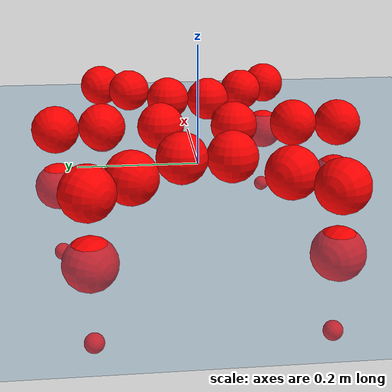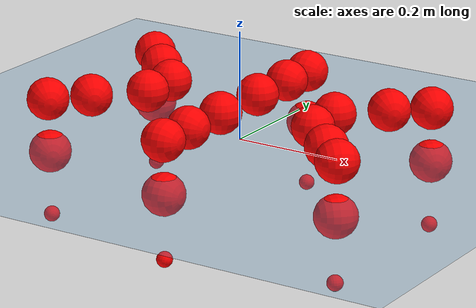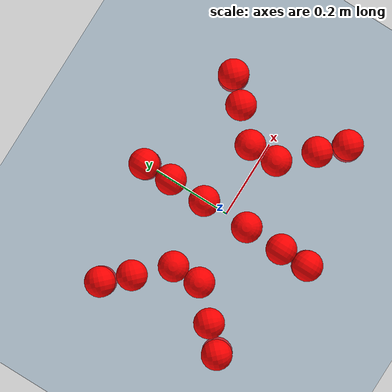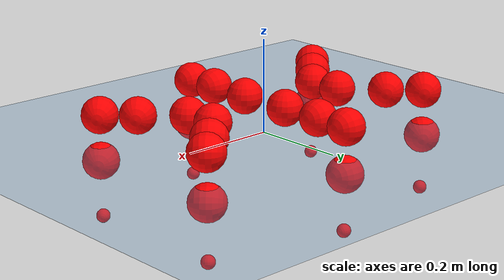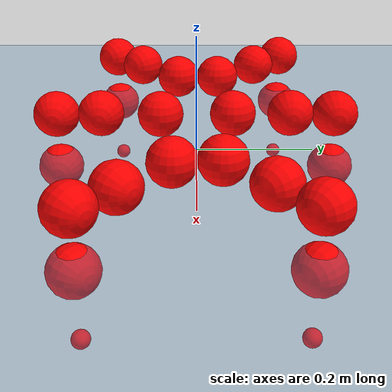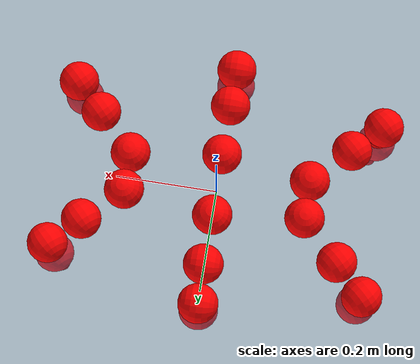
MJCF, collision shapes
<mujoco model="Golem">
  <compiler angle="radian" assetdir="assets" balanceinertia="true" inertiafromgeom="false"/>

  <option timestep="0.005" density="1.2" viscosity="2e-05"/>

  <size nkey="1"/>

  <visual>
    <quality shadowsize="8192"/>
    <map shadowclip="0.5"/>
  </visual>

  <default>
    <default class="/">
      <joint armature="0.01" damping="0.01" frictionloss="0.01"/>
      <geom contype="0" conaffinity="0" group="1" solref="-1000 -80"/>
      <site size="0.01 0.005 0.005" group="5"/>
      <general forcelimited="true" biastype="affine" gainprm="25" biasprm="0 -25 -0.5"/>
      <default class="visual">
        <geom type="mesh" group="2"/>
      </default>
      <default class="collision">
        <geom group="3"/>
      </default>
      <default class="foot">
        <geom size="0.01 0 0" condim="6" group="4" priority="1" solimp="0.015 1 0.01"/>
      </default>
      <default class="reward_collision_sphere">
        <geom group="5" rgba="1 0 0 1"/>
      </default>
    </default>
  </default>

  <asset>
    <texture type="skybox" colorspace="auto" name="//unnamed_texture_0" builtin="gradient" rgb1="0.95 0.95 0.95" rgb2="0.95 0.95 0.95" width="100" height="600"/>
    <texture type="2d" colorspace="auto" name="texplane" builtin="checker" rgb1="0.345 0.575 0.748" rgb2="0.345 0.575 0.748" markrgb="1 1 1" width="512" height="512"/>
    <material name="MatPlane" class="/" texture="texplane" texuniform="true" texrepeat="2 2" specular="0.9"/>
    <mesh name="body" class="/" file="body.stl" scale="0.001 0.001 0.001"/>
    <mesh name="coxa" class="/" file="coxa.stl" scale="0.001 0.001 0.001"/>
    <mesh name="femur" class="/" file="femur.stl" scale="0.001 0.001 0.001"/>
    <mesh name="tibia" class="/" file="tibia.stl" scale="0.001 0.001 0.001"/>
    <mesh name="tarsus" class="/" file="tarsus.stl" scale="0.001 0.001 0.001"/>
  </asset>

  <worldbody>
    <geom name="floor" class="/" size="100 100 0.125" type="plane" group="0" material="MatPlane"/>
    <light name="toplight_shadow" class="/" pos="0 0 5" dir="0.0990148 0.0990148 -0.990148" type="directional" ambient="0.04 0.04 0.04" diffuse="0.55 0.55 0.55" specular="0.12 0.12 0.12"/>
    <light name="toplight_fill" class="/" pos="0 0 5" dir="0.0990148 0.0990148 -0.990148" type="directional" castshadow="false" ambient="0.04 0.04 0.04" diffuse="0.3 0.3 0.3" specular="0.08 0.08 0.08"/>
    <body name="trunk" pos="-0.00093663 0.00188029 2.65962e-05" quat="1 9.14567e-06 -4.95094e-06 -2.16665e-05">
      <inertial pos="0.000963023 -0.000250659 -0.00540383" quat="0.999997 -0.00118015 0.000321287 -0.0023216" mass="3.39863" diaginertia="0.0176217 0.00195314 0.012559"/>
      <joint name="//unnamed_joint_0" type="free"/>
      <geom name="//unnamed_geom_1" class="/" pos="0 0 0.0671202" quat="1 0 0 0" type="mesh" rgba="0.9 0.9 0.9 1" mesh="body"/>
      <site name="imu" class="/" pos="0.143646 -0.00172462 0.10315" size="0.00961008"/>
      <camera name="track" class="/" pos="0 -1.43642 0" quat="0.707107 0.707107 0 0" mode="trackcom"/>
      <camera name="ego_camera" class="/" pos="0.145088 0 0.104875" quat="-0.5 -0.5 0.5 0.5"/>
      <body name="coxa_RR" pos="-0.198578 -0.0589043 0.069495" quat="0.382158 4.04203e-05 0.000447647 -0.924097">
        <inertial pos="-9.03778e-05 -0.00222347 0.00269892" quat="0.999998 -0.000285824 -0.000855831 0.00168439" mass="0.180661" diaginertia="0.0174114 0.00193739 0.0126645"/>
        <joint name="coxa_joint_RR" class="/" pos="0 0 0" axis="0.000104007 0.00402971 -0.999992" range="-3.11821 3.13734" armature="0.00969699" damping="0.0102637" frictionloss="0.00963203"/>
        <geom name="//unnamed_geom_2" class="/" type="mesh" rgba="0.2 0.2 0.2 1" mesh="coxa"/>
        <geom name="//unnamed_geom_3" class="reward_collision_sphere" size="0.0384403" pos="-0.0334818 0 0"/>
        <body name="femur_RR" pos="0.0687564 0.000758502 -0.00137514" quat="0.499553 -0.500206 0.499847 0.500394">
          <inertial pos="-0.00127443 0.000497182 0.000781491" quat="1 0.000200404 0.000240468 -5.9313e-05" mass="0.178322" diaginertia="0.0174157 0.00193291 0.0128036"/>
          <joint name="femur_joint_RR" class="/" pos="0 0 0" axis="0.00294636 -0.00112546 -0.999995" range="-3.1477 3.13706" armature="0.0092865" damping="0.00546836" frictionloss="0.0096875"/>
          <geom name="//unnamed_geom_4" class="/" type="mesh" rgba="0.9 0.9 0.9 1" mesh="femur"/>
          <geom name="//unnamed_geom_5" class="reward_collision_sphere" size="0.0384403"/>
          <body name="tibia_RR" pos="0.00118366 -0.0785097 0.000705784" quat="1.21513e-05 1 -6.22416e-06 2.06203e-05">
            <inertial pos="-0.00067778 -0.00022174 -0.000820189" quat="0.999999 -1.53978e-05 0.000300004 0.00106679" mass="0.174378" diaginertia="0.0172536 0.00192982 0.0130019"/>
            <joint name="tibia_joint_RR" class="/" pos="0 0 0" axis="0.00227002 -0.00317388 0.999992" range="-3.1277 3.09038" armature="0.00981645" damping="0.0107336" frictionloss="0.00954376"/>
            <geom name="//unnamed_geom_6" class="/" type="mesh" rgba="0.2 0.2 0.2 1" mesh="tibia"/>
            <geom name="//unnamed_geom_7" class="reward_collision_sphere" size="0.0384403"/>
            <body name="tarsus_RR" pos="0.09848 -0.00136154 -0.00107181" quat="1 8.87357e-05 -1.6431e-05 3.11037e-05">
              <inertial pos="0.0695925 0.00305604 -0.00151364" quat="0.498012 0.501563 0.501034 0.499383" mass="0.182176" diaginertia="0.017736 0.00199234 0.0130158"/>
              <joint name="tarsus_joint_RR" class="/" pos="0 0 0" axis="-0.00478709 0.00220298 0.999986" range="-3.09388 3.13403" armature="0.00913465" damping="0.0388975" frictionloss="0.00942372"/>
              <geom name="//unnamed_geom_8" class="/" type="mesh" rgba="0.9 0.9 0.9 1" mesh="tarsus"/>
              <geom name="foot_1" class="foot" size="0.00919368" pos="0.124999 0 0" quat="0 -0.707107 0 0.707107"/>
              <geom name="//unnamed_geom_10" class="reward_collision_sphere" size="0.0384403"/>
              <geom name="//unnamed_geom_11" class="reward_collision_sphere" size="0.0144151" pos="0.119976 0 0"/>
              <site name="foot_1" class="foot" pos="0.124999 0 0" quat="0 -0.707107 0 0.707107" size="0.00961008"/>
            </body>
          </body>
        </body>
      </body>
      <body name="coxa_RM" pos="-0.000519547 -0.0952204 0.0660189" quat="0.707121 0.000119019 3.89165e-05 -0.707092">
        <inertial pos="0.000114145 -0.000470638 -0.000725374" quat="0.999999 -0.00105432 -0.000538768 -0.000136416" mass="0.174621" diaginertia="0.0171062 0.0018806 0.012529"/>
        <joint name="coxa_joint_RM" class="/" pos="0 0 0" axis="0.00447879 0.0014835 -0.999989" range="-3.12595 3.15799" armature="0.00978584" damping="0.00640724" frictionloss="0.00846744"/>
        <geom name="//unnamed_geom_12" class="/" type="mesh" rgba="0.2 0.2 0.2 1" mesh="coxa"/>
        <geom name="//unnamed_geom_13" class="reward_collision_sphere" size="0.0384403" pos="-0.0334818 0 0"/>
        <body name="femur_RM" pos="0.0661 -0.00068022 0.00119225" quat="0.500084 -0.499898 0.499973 0.500045">
          <inertial pos="0.000271236 -0.000208112 0.00101021" quat="0.999992 -0.00387253 0.000997653 -0.000983838" mass="0.17551" diaginertia="0.0168218 0.00192642 0.0126533"/>
          <joint name="femur_joint_RM" class="/" pos="0 0 0" axis="0.00435909 0.00129518 -0.99999" range="-3.15623 3.14591" armature="0.00943722" damping="0" frictionloss="0.00944639"/>
          <geom name="//unnamed_geom_14" class="/" type="mesh" rgba="0.9 0.9 0.9 1" mesh="femur"/>
          <geom name="//unnamed_geom_15" class="reward_collision_sphere" size="0.0384403"/>
          <body name="tibia_RM" pos="0.00165691 -0.0750632 -0.00071181" quat="2.37467e-05 1 3.7194e-05 -0.000160712">
            <inertial pos="-0.00227068 -0.00249481 -0.00103221" quat="0.999935 0.0100039 -0.00457367 0.00302337" mass="0.176486" diaginertia="0.0172123 0.00190554 0.0123084"/>
            <joint name="tibia_joint_RM" class="/" pos="0 0 0" axis="0.000819919 -0.000831743 0.999999" range="-3.12927 3.12698" armature="0.00939555" damping="0.0163936" frictionloss="0.00958134"/>
            <geom name="//unnamed_geom_16" class="/" type="mesh" rgba="0.2 0.2 0.2 1" mesh="tibia"/>
            <geom name="//unnamed_geom_17" class="reward_collision_sphere" size="0.0384403"/>
            <body name="tarsus_RM" pos="0.0974561 0.000517217 -0.000442271" quat="1 0.000131725 -0.000301263 0.000168945">
              <inertial pos="0.0666458 0.000918 0.000544998" quat="0.50178 0.499356 0.499187 0.499673" mass="0.178228" diaginertia="0.0172074 0.00192796 0.0127175"/>
              <joint name="tarsus_joint_RM" class="/" pos="0 0 0" axis="0.0016138 0.00186451 0.999997" range="-3.13813 3.13299" armature="0.00860148" damping="0.0030173" frictionloss="0.00975022"/>
              <geom name="//unnamed_geom_18" class="/" type="mesh" rgba="0.9 0.9 0.9 1" mesh="tarsus"/>
              <geom name="foot_2" class="foot" size="0.00931" pos="0.124999 0 0" quat="0 -0.707107 0 0.707107"/>
              <geom name="//unnamed_geom_20" class="reward_collision_sphere" size="0.0384403"/>
              <geom name="//unnamed_geom_21" class="reward_collision_sphere" size="0.0144151" pos="0.119976 0 0"/>
              <site name="foot_2" class="foot" pos="0.124999 0 0" quat="0 -0.707107 0 0.707107" size="0.00961008"/>
            </body>
          </body>
        </body>
      </body>
      <body name="coxa_RF" pos="0.198103 -0.0611336 0.0661674" quat="0.924048 1.28189e-05 -5.21119e-05 -0.382276">
        <inertial pos="0.00182812 -0.000176166 0.000446022" quat="1 0.000417907 0.00018703 0.000182503" mass="0.178238" diaginertia="0.0177921 0.00189756 0.0124132"/>
        <joint name="coxa_joint_RF" class="/" pos="0 0 0" axis="0.00128189 0.00270141 -0.999996" range="-3.14107 3.13275" armature="0.0098776" damping="0.0089669" frictionloss="0.00938088"/>
        <geom name="//unnamed_geom_22" class="/" type="mesh" rgba="0.2 0.2 0.2 1" mesh="coxa"/>
        <geom name="//unnamed_geom_23" class="reward_collision_sphere" size="0.0384403" pos="-0.0334818 0 0"/>
        <body name="femur_RF" pos="0.0680748 -0.000954631 -0.00140998" quat="0.500047 -0.499871 0.499859 0.500222">
          <inertial pos="-0.000613277 0.000341315 -0.00103344" quat="0.999988 -0.00120769 -0.000129714 -0.00476359" mass="0.175761" diaginertia="0.0174505 0.00196427 0.0125687"/>
          <joint name="femur_joint_RF" class="/" pos="0 0 0" axis="0.000223155 -0.000140517 -1" range="-3.10634 3.14414" armature="0.00988787" damping="0" frictionloss="0.00913607"/>
          <geom name="//unnamed_geom_24" class="/" type="mesh" rgba="0.9 0.9 0.9 1" mesh="femur"/>
          <geom name="//unnamed_geom_25" class="reward_collision_sphere" size="0.0384403"/>
          <body name="tibia_RF" pos="0.000239048 -0.0768064 -0.000570491" quat="-5.2857e-05 1 -1.84127e-05 2.48992e-05">
            <inertial pos="-0.0010317 0.000714613 0.000381429" quat="0.999988 0.00137181 -0.00444751 0.00171622" mass="0.17741" diaginertia="0.0177817 0.00190663 0.0128357"/>
            <joint name="tibia_joint_RF" class="/" pos="0 0 0" axis="-0.00128946 3.76631e-05 0.999999" range="-3.13041 3.15159" armature="0.00926011" damping="0.0110565" frictionloss="0.0089994"/>
            <geom name="//unnamed_geom_26" class="/" type="mesh" rgba="0.2 0.2 0.2 1" mesh="tibia"/>
            <geom name="//unnamed_geom_27" class="reward_collision_sphere" size="0.0384403"/>
            <body name="tarsus_RF" pos="0.097329 0.00148647 0.00152137" quat="0.999999 0.000593337 -0.000776468 0.00047175">
              <inertial pos="0.0663878 -0.0020621 0.000763774" quat="0.496134 0.494031 0.500139 0.509554" mass="0.173637" diaginertia="0.0176257 0.00184266 0.0126327"/>
              <joint name="tarsus_joint_RF" class="/" pos="0 0 0" axis="-0.0039954 -0.00493747 0.99998" range="-3.09733 3.13057" armature="0.0107444" damping="0" frictionloss="0.00968662"/>
              <geom name="//unnamed_geom_28" class="/" type="mesh" rgba="0.9 0.9 0.9 1" mesh="tarsus"/>
              <geom name="foot_3" class="foot" size="0.0100857" pos="0.124999 0 0" quat="0 -0.707107 0 0.707107"/>
              <geom name="//unnamed_geom_30" class="reward_collision_sphere" size="0.0384403"/>
              <geom name="//unnamed_geom_31" class="reward_collision_sphere" size="0.0144151" pos="0.119976 0 0"/>
              <site name="foot_3" class="foot" pos="0.124999 0 0" quat="0 -0.707107 0 0.707107" size="0.00961008"/>
            </body>
          </body>
        </body>
      </body>
      <body name="coxa_LR" pos="-0.198681 0.0620893 0.0695638" quat="0.382214 3.10126e-05 0.000438238 0.924074">
        <inertial pos="0.00116487 -0.0025712 -0.000617926" quat="0.999981 0.00103487 0.00476735 0.00369966" mass="0.172088" diaginertia="0.0168022 0.00190581 0.0123521"/>
        <joint name="coxa_joint_LR" class="/" pos="0 0 0" axis="0.000784879 -0.000127046 -1" range="-3.12477 3.18134" armature="0.00868134" damping="0.00770707" frictionloss="0.00966811"/>
        <geom name="//unnamed_geom_32" class="/" type="mesh" rgba="0.2 0.2 0.2 1" mesh="coxa"/>
        <geom name="//unnamed_geom_33" class="reward_collision_sphere" size="0.0384403" pos="-0.0334818 0 0"/>
        <body name="femur_LR" pos="0.0699348 -0.00180826 -0.00115982" quat="0.499849 -0.500109 0.499779 0.500262">
          <inertial pos="-0.001042 -0.000289737 -0.000937329" quat="0.999943 -0.00831491 0.00232413 -0.00625879" mass="0.177909" diaginertia="0.0174686 0.00191639 0.0130971"/>
          <joint name="femur_joint_LR" class="/" pos="0 0 0" axis="-0.000379129 -0.000807995 1" range="-3.09213 3.11423" armature="0.00958782" damping="0" frictionloss="0.00948322"/>
          <geom name="//unnamed_geom_34" class="/" type="mesh" rgba="0.9 0.9 0.9 1" mesh="femur"/>
          <geom name="//unnamed_geom_35" class="reward_collision_sphere" size="0.0384403"/>
          <body name="tibia_LR" pos="-0.00108975 -0.0790622 -0.002305" quat="7.50581e-05 1 -0.000176379 -5.67633e-05">
            <inertial pos="-0.000407826 -0.00200741 0.00114322" quat="1 -1.59153e-05 -9.64484e-06 -4.51857e-06" mass="0.177604" diaginertia="0.0174263 0.00189608 0.012733"/>
            <joint name="tibia_joint_LR" class="/" pos="0 0 0" axis="0.0015303 -0.0018973 -0.999997" range="-3.16487 3.13575" armature="0.00963355" damping="0" frictionloss="0.0096903"/>
            <geom name="//unnamed_geom_36" class="/" type="mesh" rgba="0.2 0.2 0.2 1" mesh="tibia"/>
            <geom name="//unnamed_geom_37" class="reward_collision_sphere" size="0.0384403"/>
            <body name="tarsus_LR" pos="0.0998068 0.000601708 -5.16508e-06" quat="1 3.9281e-05 -0.000764602 0.000226403">
              <inertial pos="0.0686887 0.000261114 0.000176311" quat="0.499466 0.501213 0.499061 0.500258" mass="0.17763" diaginertia="0.0171377 0.00189841 0.0125101"/>
              <joint name="tarsus_joint_LR" class="/" pos="0 0 0" axis="-0.000949494 0.000567058 -0.999999" range="-3.17292 3.13665" armature="0.00963843" damping="0.0301505" frictionloss="0.00872164"/>
              <geom name="//unnamed_geom_38" class="/" type="mesh" rgba="0.9 0.9 0.9 1" mesh="tarsus"/>
              <geom name="foot_4" class="foot" size="0.00934413" pos="0.124999 0 0" quat="0.707107 0 -0.707107 0"/>
              <geom name="//unnamed_geom_40" class="reward_collision_sphere" size="0.0384403"/>
              <geom name="//unnamed_geom_41" class="reward_collision_sphere" size="0.0144151" pos="0.119976 0 0"/>
              <site name="foot_4" class="foot" pos="0.124999 0 0" quat="0.707107 0 -0.707107 0" size="0.00961008"/>
            </body>
          </body>
        </body>
      </body>
      <body name="coxa_LM" pos="-0.000937066 0.0929975 0.067124" quat="0.706945 -6.45337e-05 1.21245e-05 0.707269">
        <inertial pos="-0.00105843 0.000926053 -9.12831e-05" quat="1 0.000242096 -5.79302e-05 -6.63586e-05" mass="0.179148" diaginertia="0.0170784 0.00186873 0.0130669"/>
        <joint name="coxa_joint_LM" class="/" pos="0 0 0" axis="-0.00145585 -0.00342915 -0.999993" stiffness="0.00649456" range="-3.13685 3.1358" armature="0.0106147" damping="0.0020047" frictionloss="0.00945849"/>
        <geom name="//unnamed_geom_42" class="/" type="mesh" rgba="0.2 0.2 0.2 1" mesh="coxa"/>
        <geom name="//unnamed_geom_43" class="reward_collision_sphere" size="0.0384403" pos="-0.0334818 0 0"/>
        <body name="femur_LM" pos="0.062748 -0.00132717 0.00107623" quat="0.499983 -0.49999 0.500004 0.500023">
          <inertial pos="0.00122687 -0.000658441 0.00181218" quat="0.999999 -0.000824671 -0.000479119 -0.00034279" mass="0.177784" diaginertia="0.0171786 0.00190827 0.0128412"/>
          <joint name="femur_joint_LM" class="/" pos="0 0 0" axis="-0.00533327 0.00562557 0.99997" range="-3.13523 3.11723" armature="0.00923307" damping="0.00483623" frictionloss="0.00984217"/>
          <geom name="//unnamed_geom_44" class="/" type="mesh" rgba="0.9 0.9 0.9 1" mesh="femur"/>
          <geom name="//unnamed_geom_45" class="reward_collision_sphere" size="0.0384403"/>
          <body name="tibia_LM" pos="0.00178182 -0.0750719 0.00212164" quat="-0.000167064 1 -8.79788e-05 0.000209461">
            <inertial pos="0.000135734 -0.00250997 0.0024097" quat="0.999929 0.011671 -0.00144505 -0.00202727" mass="0.17314" diaginertia="0.0174602 0.00187574 0.0124764"/>
            <joint name="tibia_joint_LM" class="/" pos="0 0 0" axis="0.00224623 -0.00384359 -0.99999" range="-3.13859 3.10147" armature="0.00917999" damping="0.00355891" frictionloss="0.00961678"/>
            <geom name="//unnamed_geom_46" class="/" type="mesh" rgba="0.2 0.2 0.2 1" mesh="tibia"/>
            <geom name="//unnamed_geom_47" class="reward_collision_sphere" size="0.0384403"/>
            <body name="tarsus_LM" pos="0.0979158 -0.000187389 0.00103447" quat="1 0.000166851 0.000138879 -0.000463914">
              <inertial pos="0.067361 0.000155713 -0.00151067" quat="0.493934 0.508451 0.496536 0.500958" mass="0.18245" diaginertia="0.0174704 0.00189779 0.0127068"/>
              <joint name="tarsus_joint_LM" class="/" pos="0 0 0" axis="-0.00628836 -0.00393151 -0.999972" range="-3.14689 3.10333" armature="0.0100011" damping="0" frictionloss="0.00955798"/>
              <geom name="//unnamed_geom_48" class="/" type="mesh" rgba="0.9 0.9 0.9 1" mesh="tarsus"/>
              <geom name="foot_5" class="foot" size="0.00952966" pos="0.124999 0 0" quat="0.707107 0 -0.707107 0"/>
              <geom name="//unnamed_geom_50" class="reward_collision_sphere" size="0.0384403"/>
              <geom name="//unnamed_geom_51" class="reward_collision_sphere" size="0.0144151" pos="0.119976 0 0"/>
              <site name="foot_5" class="foot" pos="0.124999 0 0" quat="0.707107 0 -0.707107 0" size="0.00961008"/>
            </body>
          </body>
        </body>
      </body>
      <body name="coxa_LF" pos="0.197324 0.0605224 0.0686865" quat="0.923853 3.21346e-05 -0.00095947 0.382746">
        <inertial pos="-0.000886642 0.000919149 -0.00073277" quat="0.999929 0.00902694 -0.00706927 0.00318241" mass="0.182018" diaginertia="0.0174231 0.00195611 0.0122993"/>
        <joint name="coxa_joint_LF" class="/" pos="0 0 0" axis="0.00106355 0.000388353 -0.999999" range="-3.1388 3.14175" armature="0.00980258" damping="0.00366012" frictionloss="0.00944679"/>
        <geom name="//unnamed_geom_52" class="/" type="mesh" rgba="0.2 0.2 0.2 1" mesh="coxa"/>
        <geom name="//unnamed_geom_53" class="reward_collision_sphere" size="0.0384403" pos="-0.0334818 0 0"/>
        <body name="femur_LF" pos="0.0653998 0.000338683 -9.76622e-05" quat="0.500115 -0.499769 0.499819 0.500296">
          <inertial pos="0.00182142 0.000961017 0.00208108" quat="0.999987 -0.00244184 0.00303203 -0.00326078" mass="0.174906" diaginertia="0.0168898 0.00190647 0.0122526"/>
          <joint name="femur_joint_LF" class="/" pos="0 0 0" axis="0.000319925 0.00250588 0.999997" range="-3.13851 3.18682" armature="0.00994043" damping="0" frictionloss="0.00982233"/>
          <geom name="//unnamed_geom_54" class="/" type="mesh" rgba="0.9 0.9 0.9 1" mesh="femur"/>
          <geom name="//unnamed_geom_55" class="reward_collision_sphere" size="0.0384403"/>
          <body name="tibia_LF" pos="0.00214368 -0.0777656 0.000462341" quat="-0.000192678 1 0.000163833 7.68986e-05">
            <inertial pos="0.000185207 -0.000925242 -7.75706e-05" quat="1 -0.000334361 -0.000740386 0.000311217" mass="0.177498" diaginertia="0.0172616 0.00191935 0.0127346"/>
            <joint name="tibia_joint_LF" class="/" pos="0 0 0" axis="-0.00167367 -0.00348612 -0.999993" stiffness="0.000237032" range="-3.12013 3.15022" armature="0.00865513" damping="0" frictionloss="0.00912163"/>
            <geom name="//unnamed_geom_56" class="/" type="mesh" rgba="0.2 0.2 0.2 1" mesh="tibia"/>
            <geom name="//unnamed_geom_57" class="reward_collision_sphere" size="0.0384403"/>
            <body name="tarsus_LF" pos="0.098792 0.000349697 -0.000130934" quat="1 -0.000147397 -0.000281806 0.000274357">
              <inertial pos="0.0663243 -0.000834556 0.000588216" quat="0.500249 0.499408 0.499998 0.500345" mass="0.175488" diaginertia="0.0175068 0.00192362 0.0127573"/>
              <joint name="tarsus_joint_LF" class="/" pos="0 0 0" axis="-0.00236829 0.000728592 -0.999997" stiffness="0.0211502" range="-3.17827 3.18015" armature="0.00958794" damping="0" frictionloss="0.00936238"/>
              <geom name="//unnamed_geom_58" class="/" type="mesh" rgba="0.9 0.9 0.9 1" mesh="tarsus"/>
              <geom name="foot_6" class="foot" size="0.00929588" pos="0.124999 0 0" quat="0.707107 0 -0.707107 0"/>
              <geom name="//unnamed_geom_60" class="reward_collision_sphere" size="0.0384403"/>
              <geom name="//unnamed_geom_61" class="reward_collision_sphere" size="0.0144151" pos="0.119976 0 0"/>
              <site name="foot_6" class="foot" pos="0.124999 0 0" quat="0.707107 0 -0.707107 0" size="0.00961008"/>
            </body>
          </body>
        </body>
      </body>
    </body>
  </worldbody>

  <contact>
    <pair class="/" geom1="floor" geom2="foot_1" name="//unnamed_contact_0"/>
    <pair class="/" geom1="floor" geom2="foot_2" name="//unnamed_contact_1"/>
    <pair class="/" geom1="floor" geom2="foot_3" name="//unnamed_contact_2"/>
    <pair class="/" geom1="floor" geom2="foot_4" name="//unnamed_contact_3"/>
    <pair class="/" geom1="floor" geom2="foot_5" name="//unnamed_contact_4"/>
    <pair class="/" geom1="floor" geom2="foot_6" name="//unnamed_contact_5"/>
  </contact>

  <actuator>
    <general name="coxa_joint_RR" class="/" joint="coxa_joint_RR" forcerange="-6.79542 6.79542" gainprm="23.0453" biasprm="0 -23.0453 -0.502387"/>
    <general name="femur_joint_RR" class="/" joint="femur_joint_RR" forcerange="-7.13727 7.13727" gainprm="23.0453" biasprm="0 -23.0453 -0.502387"/>
    <general name="tibia_joint_RR" class="/" joint="tibia_joint_RR" forcerange="-6.43195 6.43195" gainprm="23.0453" biasprm="0 -23.0453 -0.502387"/>
    <general name="tarsus_joint_RR" class="/" joint="tarsus_joint_RR" forcerange="-6.94128 6.94128" gainprm="23.0453" biasprm="0 -23.0453 -0.502387"/>
    <general name="coxa_joint_RM" class="/" joint="coxa_joint_RM" forcerange="-7.00112 7.00112" gainprm="23.0453" biasprm="0 -23.0453 -0.502387"/>
    <general name="femur_joint_RM" class="/" joint="femur_joint_RM" forcerange="-7.13537 7.13537" gainprm="23.0453" biasprm="0 -23.0453 -0.502387"/>
    <general name="tibia_joint_RM" class="/" joint="tibia_joint_RM" forcerange="-6.38946 6.38946" gainprm="23.0453" biasprm="0 -23.0453 -0.502387"/>
    <general name="tarsus_joint_RM" class="/" joint="tarsus_joint_RM" forcerange="-7.2789 7.2789" gainprm="23.0453" biasprm="0 -23.0453 -0.502387"/>
    <general name="coxa_joint_RF" class="/" joint="coxa_joint_RF" forcerange="-6.88599 6.88599" gainprm="23.0453" biasprm="0 -23.0453 -0.502387"/>
    <general name="femur_joint_RF" class="/" joint="femur_joint_RF" forcerange="-7.64447 7.64447" gainprm="23.0453" biasprm="0 -23.0453 -0.502387"/>
    <general name="tibia_joint_RF" class="/" joint="tibia_joint_RF" forcerange="-6.89543 6.89543" gainprm="23.0453" biasprm="0 -23.0453 -0.502387"/>
    <general name="tarsus_joint_RF" class="/" joint="tarsus_joint_RF" forcerange="-7.63927 7.63927" gainprm="23.0453" biasprm="0 -23.0453 -0.502387"/>
    <general name="coxa_joint_LR" class="/" joint="coxa_joint_LR" forcerange="-6.63086 6.63086" gainprm="23.0453" biasprm="0 -23.0453 -0.502387"/>
    <general name="femur_joint_LR" class="/" joint="femur_joint_LR" forcerange="-6.76207 6.76207" gainprm="23.0453" biasprm="0 -23.0453 -0.502387"/>
    <general name="tibia_joint_LR" class="/" joint="tibia_joint_LR" forcerange="-7.01367 7.01367" gainprm="23.0453" biasprm="0 -23.0453 -0.502387"/>
    <general name="tarsus_joint_LR" class="/" joint="tarsus_joint_LR" forcerange="-7.09536 7.09536" gainprm="23.0453" biasprm="0 -23.0453 -0.502387"/>
    <general name="coxa_joint_LM" class="/" joint="coxa_joint_LM" forcerange="-6.85908 6.85908" gainprm="23.0453" biasprm="0 -23.0453 -0.502387"/>
    <general name="femur_joint_LM" class="/" joint="femur_joint_LM" forcerange="-7.0257 7.0257" gainprm="23.0453" biasprm="0 -23.0453 -0.502387"/>
    <general name="tibia_joint_LM" class="/" joint="tibia_joint_LM" forcerange="-6.47448 6.47448" gainprm="23.0453" biasprm="0 -23.0453 -0.502387"/>
    <general name="tarsus_joint_LM" class="/" joint="tarsus_joint_LM" forcerange="-6.83762 6.83762" gainprm="23.0453" biasprm="0 -23.0453 -0.502387"/>
    <general name="coxa_joint_LF" class="/" joint="coxa_joint_LF" forcerange="-6.74889 6.74889" gainprm="23.0453" biasprm="0 -23.0453 -0.502387"/>
    <general name="femur_joint_LF" class="/" joint="femur_joint_LF" forcerange="-6.59016 6.59016" gainprm="23.0453" biasprm="0 -23.0453 -0.502387"/>
    <general name="tibia_joint_LF" class="/" joint="tibia_joint_LF" forcerange="-6.98091 6.98091" gainprm="23.0453" biasprm="0 -23.0453 -0.502387"/>
    <general name="tarsus_joint_LF" class="/" joint="tarsus_joint_LF" forcerange="-7.03401 7.03401" gainprm="23.0453" biasprm="0 -23.0453 -0.502387"/>
  </actuator>

  <sensor>
    <gyro site="imu" name="imu_angular_velocity"/>
    <velocimeter site="imu" name="imu_linear_velocity"/>
    <framelinvel objtype="site" objname="foot_1" name="foot_1_global_linear_velocity"/>
    <framelinvel objtype="site" objname="foot_2" name="foot_2_global_linear_velocity"/>
    <framelinvel objtype="site" objname="foot_3" name="foot_3_global_linear_velocity"/>
    <framelinvel objtype="site" objname="foot_4" name="foot_4_global_linear_velocity"/>
    <framelinvel objtype="site" objname="foot_5" name="foot_5_global_linear_velocity"/>
    <framelinvel objtype="site" objname="foot_6" name="foot_6_global_linear_velocity"/>
  </sensor>

  <keyframe>
    <key name="home" qpos="0 0 0.1457 1 0 0 0 0 0 0 0 0 0 0 0 0 0 0 0 0 0 0 0 0 0 0 0 0 0 0 0"/>
  </keyframe>
</mujoco>
